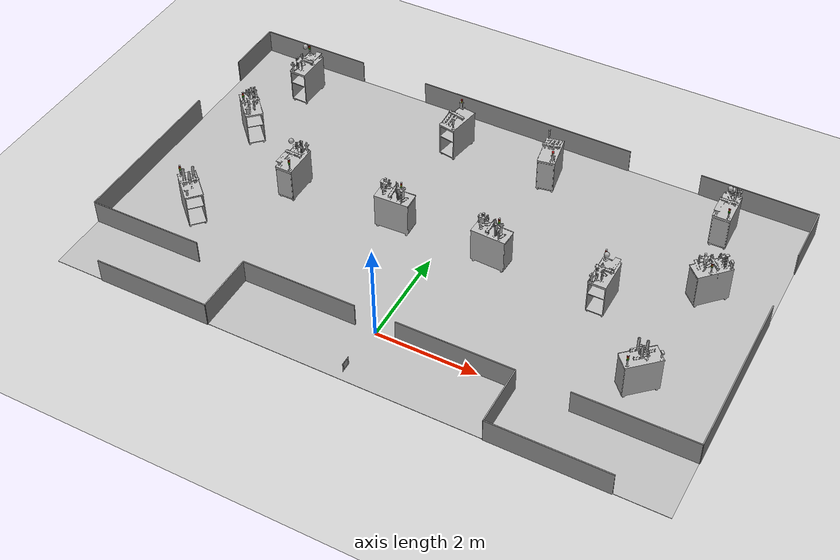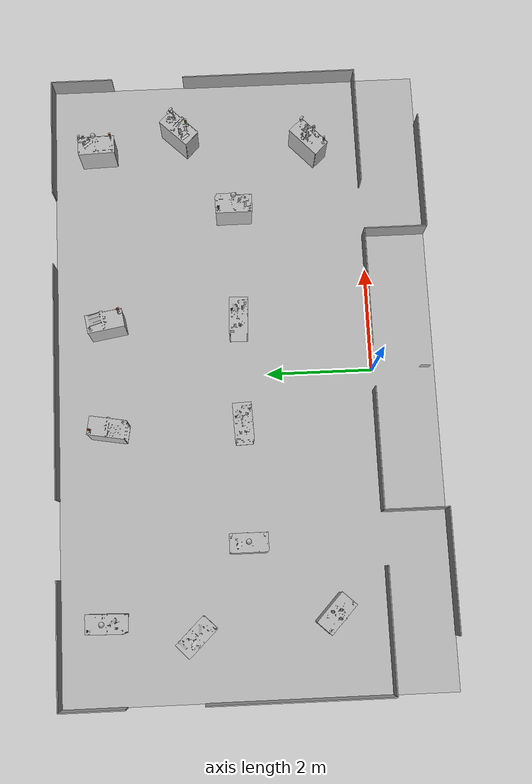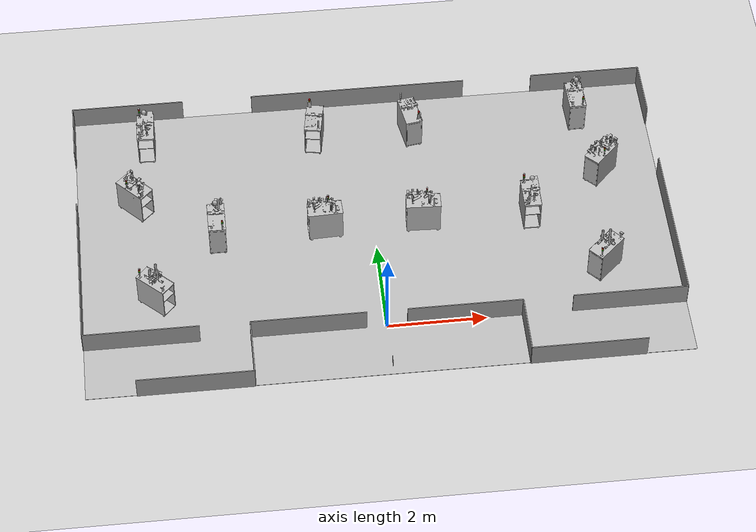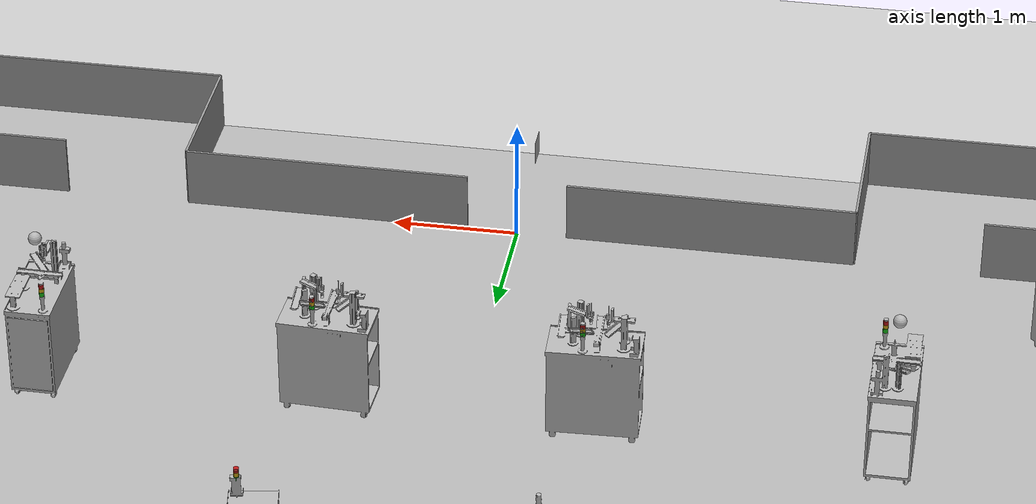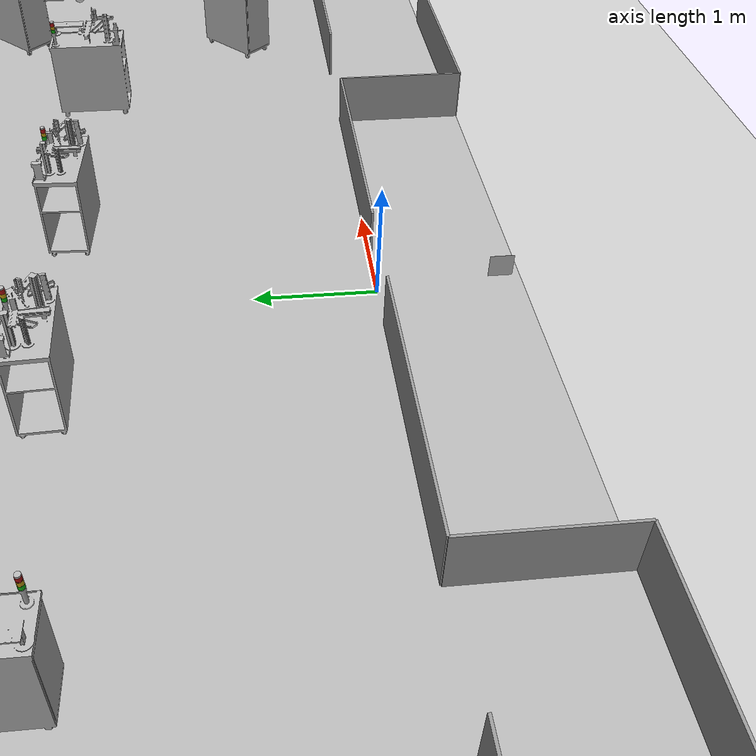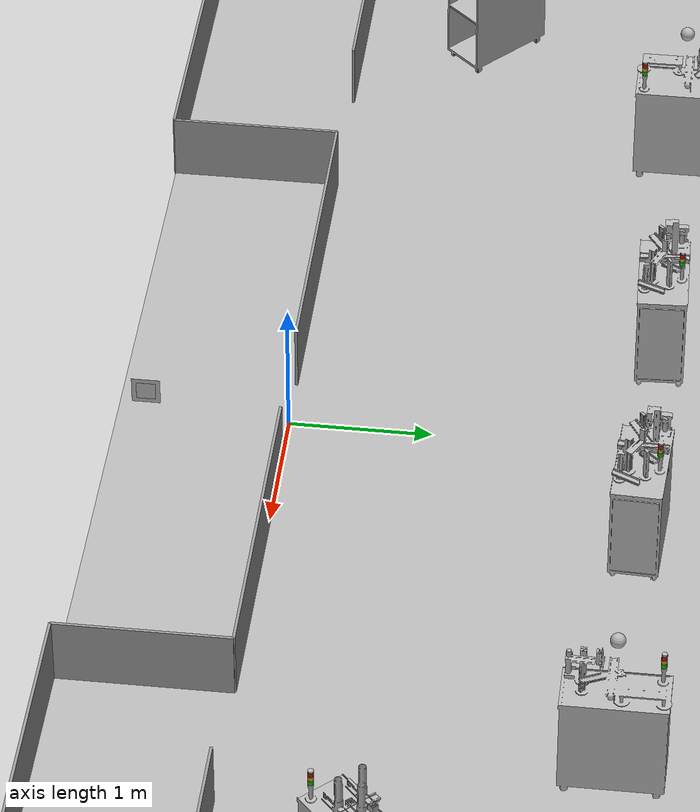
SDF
<sdf version="1.4">
 <world name="LLSF">
  <physics type="ode">
   <max_step_size>0.004</max_step_size>
   <real_time_factor>1</real_time_factor>
   <real_time_update_rate>300</real_time_update_rate>
  </physics>
  <scene><ambient>0.5 0.5 0.5 1.0</ambient><shadows>0</shadows></scene>
  <include><uri>model://ground_plane</uri></include>
  <include><uri>model://sun</uri></include>
  <include><uri>model://german_open_field</uri></include>
  <include><name>C-CS1</name><uri>model://mps_cap</uri><pose>-4.5 5.1 0 0 0 -1.6</pose></include>
  <include><name>M-CS1</name><uri>model://mps_cap</uri><pose>4.5 5.1 0 0 0 1.6</pose></include>
  <include><name>M-DS</name><uri>model://mps_delivery</uri><pose>-1 5.0 0 0 0 -1.74</pose></include>
  <include><name>C-DS</name><uri>model://mps_delivery</uri><pose>1 5.0 0 0 0 1.74</pose></include>
  <include><name>C-CS2</name><uri>model://mps_cap</uri><pose>-3.2 2.5 0 0 0 1.57</pose></include>
  <include><name>M-CS2</name><uri>model://mps_cap</uri><pose>3.2 2.5 0 0 0 -1.57</pose></include>
  <include><name>C-RS1</name><uri>model://mps_ring</uri><pose>1 2.5 0 0 0 3.1</pose></include>
  <include><name>M-RS1</name><uri>model://mps_ring</uri><pose>-1 2.5 0 0 0 -3.1</pose></include>
  <include><name>C-RS2</name><uri>model://mps_ring</uri><pose>4.8 3.5 0 0 0 0.8</pose></include>
  <include><name>M-RS2</name><uri>model://mps_ring</uri><pose>-4.8 3.5 0 0 0 -0.8</pose></include>
  <include><name>C-BS</name><uri>model://mps_base</uri><pose>4.5 1.0 0 0 0 0.75</pose></include>
  <include><name>M-BS</name><uri>model://mps_base</uri><pose>-4.5 1.0 0 0 0 -0.75</pose></include>
  <include><name>tag_01</name><uri>model://tag</uri><pose>0 -1 0.2 0 0 0</pose></include>
  <include><name>tag_02</name><uri>model://tag</uri><pose>0 -1 0.2 0 0 0</pose></include>
  <include><name>tag_17</name><uri>model://tag</uri><pose>0 -1 0.2 0 0 0</pose></include>
  <include><name>tag_18</name><uri>model://tag</uri><pose>0 -1 0.2 0 0 0</pose></include>
  <include><name>tag_33</name><uri>model://tag</uri><pose>0 -1 0.2 0 0 0</pose></include>
  <include><name>tag_34</name><uri>model://tag</uri><pose>0 -1 0.2 0 0 0</pose></include>
  <include><name>tag_177</name><uri>model://tag</uri><pose>0 -1 0.2 0 0 0</pose></include>
  <include><name>tag_178</name><uri>model://tag</uri><pose>0 -1 0.2 0 0 0</pose></include>
  <include><name>tag_65</name><uri>model://tag</uri><pose>0 -1 0.2 0 0 0</pose></include>
  <include><name>tag_66</name><uri>model://tag</uri><pose>0 -1 0.2 0 0 0</pose></include>
  <include><name>tag_81</name><uri>model://tag</uri><pose>0 -1 0.2 0 0 0</pose></include>
  <include><name>tag_82</name><uri>model://tag</uri><pose>0 -1 0.2 0 0 0</pose></include>
  <include><name>tag_97</name><uri>model://tag</uri><pose>0 -1 0.2 0 0 0</pose></include>
  <include><name>tag_98</name><uri>model://tag</uri><pose>0 -1 0.2 0 0 0</pose></include>
  <include><name>tag_113</name><uri>model://tag</uri><pose>0 -1 0.2 0 0 0</pose></include>
  <include><name>tag_114</name><uri>model://tag</uri><pose>0 -1 0.2 0 0 0</pose></include>
  <include><name>tag_129</name><uri>model://tag</uri><pose>0 -1 0.2 0 0 0</pose></include>
  <include><name>tag_130</name><uri>model://tag</uri><pose>0 -1 0.2 0 0 0</pose></include>
  <include><name>tag_145</name><uri>model://tag</uri><pose>0 -1 0.2 0 0 0</pose></include>
  <include><name>tag_146</name><uri>model://tag</uri><pose>0 -1 0.2 0 0 0</pose></include>
  <include><name>tag_161</name><uri>model://tag</uri><pose>0 -1 0.2 0 0 0</pose></include>
  <include><name>tag_162</name><uri>model://tag</uri><pose>0 -1 0.2 0 0 0</pose></include>
  <include><name>tag_49</name><uri>model://tag</uri><pose>0 -1 0.2 0 0 0</pose></include>
  <include><name>tag_50</name><uri>model://tag</uri><pose>0 -1 0.2 0 0 0</pose></include>
  <plugin name="llsf_refbox_comm" filename="libllsf_refbox_comm.so"/>
  <plugin name="timesync" filename="libtimesync.so"/>
 </world>
</sdf>

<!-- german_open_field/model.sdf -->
<sdf version="1.5">
  <model name="German Open Logistics League Field">
    <pose>0 2.5 0 0 0 0</pose>
    <static>true</static>
    <link name="field">
      <pose>0 0 0.01 0 0 0</pose>
      <collision name="collision">
        <geometry>
          <plane>
            <normal>0 0 1</normal>
            <size>12 7</size>
          </plane>
        </geometry>
        <surface>
          <friction>
            <ode>
              <mu>100</mu>
              <mu2>50</mu2>
            </ode>
          </friction>
        </surface>
      </collision>
      <visual name="carpet">
        <pose>0 -0.1 0 0 0 0</pose>
        <cast_shadows>false</cast_shadows>
        <geometry>
          <plane>
            <normal>0 0 1</normal>
            <size>12 7.2</size>
          </plane>
        </geometry>
        <material>
          <script>
            <uri>model://german_open_field/materials/scripts/</uri>
            <uri>model://german_open_field/materials/textures/</uri>
            <name>Logistics_League_Field/Image</name>
          </script>
        </material>
      </visual>
    </link>

    <link name="wall_bottom_middle_left">
      <pose>-1.55 -2.5 0.25 0 0 1.570796327</pose>
      <visual name="wall_bottom_middle_left-visual">
        <geometry>
          <box>
			<size>.02 2.3 .5</size>
          </box>
        </geometry>
        <cast_shadows>false</cast_shadows>
        <material>
	  <script>
	    <uri>file://media/materials/scripts/gazebo.material</uri>
	    <name>Gazebo/Grey</name>
	  </script>
        </material>
      </visual>
      <collision name="wall_bottom_middle_left-collision">
        <geometry>
		    <box>
			  <size>.02 2.3 .5</size>
		    </box>
        </geometry>
      </collision>
    </link>

    <link name="wall_bottom_middle_left_down">
      <pose>-2.7 -3.1 0.25 0 0 0</pose>
      <visual name="wall_bottom_middle_left_down-visual">
        <geometry>
          <box>
			<size>.02 1.2 .5</size>
          </box>
        </geometry>
        <cast_shadows>false</cast_shadows>
        <material>
	  <script>
	    <uri>file://media/materials/scripts/gazebo.material</uri>
	    <name>Gazebo/Grey</name>
	  </script>
        </material>
      </visual>
      <collision name="wall_bottom_middle_left_down-collision">
        <geometry>
		    <box>
			  <size>.02 1.2 .5</size>
		    </box>
        </geometry>
      </collision>
    </link>

    <link name="wall_bottom_middle_left_outer">
      <pose>-3.85 -3.7 0.25 0 0 1.570796327</pose>
      <visual name="wall_bottom_middle_left_outer-visual">
        <geometry>
          <box>
			<size>.02 2.3 .5</size>
          </box>
        </geometry>
        <cast_shadows>false</cast_shadows>
        <material>
	  <script>
	    <uri>file://media/materials/scripts/gazebo.material</uri>
	    <name>Gazebo/Grey</name>
	  </script>
        </material>
      </visual>
      <collision name="wall_bottom_middle_left_outer-collision">
        <geometry>
		    <box>
			  <size>.02 2.3 .5</size>
		    </box>
        </geometry>
      </collision>
    </link>

    <link name="wall_bottom_left">
      <pose>-4.85 -2.5 0.25 0 0 1.570796327</pose>
      <visual name="wall_bottom_left-visual">
        <geometry>
          <box>
			<size>.02 2.3 .5</size>
          </box>
        </geometry>
        <cast_shadows>false</cast_shadows>
        <material>
	  <script>
	    <uri>file://media/materials/scripts/gazebo.material</uri>
	    <name>Gazebo/Grey</name>
	  </script>
        </material>
      </visual>
      <collision name="wall_bottom_left-collision">
        <geometry>
		    <box>
			  <size>.02 2.3 .5</size>
		    </box>
        </geometry>
      </collision>
    </link>

    <link name="wall_bottom_middle_right">
      <pose>1.55 -2.5 0.25 0 0 1.570796327</pose>
      <visual name="wall_bottom_middle_right-visual">
        <geometry>
          <box>
			<size>.02 2.3 .5</size>
          </box>
        </geometry>
        <cast_shadows>false</cast_shadows>
        <material>
	  <script>
	    <uri>file://media/materials/scripts/gazebo.material</uri>
	    <name>Gazebo/Grey</name>
	  </script>
        </material>
      </visual>
      <collision name="wall_bottom_middle_right-collision">
        <geometry>
		    <box>
			  <size>.02 2.3 .5</size>
		    </box>
        </geometry>
      </collision>
    </link>

    <link name="wall_bottom_middle_right_down">
      <pose>2.7 -3.1 0.25 0 0 0</pose>
      <visual name="wall_bottom_middle_right_down-visual">
        <geometry>
          <box>
			<size>.02 1.2 .5</size>
          </box>
        </geometry>
        <cast_shadows>false</cast_shadows>
        <material>
	  <script>
	    <uri>file://media/materials/scripts/gazebo.material</uri>
	    <name>Gazebo/Grey</name>
	  </script>
        </material>
      </visual>
      <collision name="wall_bottom_middle_right_down-collision">
        <geometry>
		    <box>
			  <size>.02 1.2 .5</size>
		    </box>
        </geometry>
      </collision>
    </link>

    <link name="wall_bottom_middle_right_outer">
      <pose>3.85 -3.7 0.25 0 0 1.570796327</pose>
      <visual name="wall_bottom_middle_right_outer-visual">
        <geometry>
          <box>
			<size>.02 2.3 .5</size>
          </box>
        </geometry>
        <cast_shadows>false</cast_shadows>
        <material>
	  <script>
	    <uri>file://media/materials/scripts/gazebo.material</uri>
	    <name>Gazebo/Grey</name>
	  </script>
        </material>
      </visual>
      <collision name="wall_bottom_middle_right_outer-collision">
        <geometry>
		    <box>
			  <size>.02 2.3 .5</size>
		    </box>
        </geometry>
      </collision>
    </link>

    <link name="wall_bottom_right">
      <pose>4.85 -2.5 0.25 0 0 1.570796327</pose>
      <visual name="wall_bottom_right-visual">
        <geometry>
          <box>
			<size>.02 2.3 .5</size>
          </box>
        </geometry>
        <cast_shadows>false</cast_shadows>
        <material>
	  <script>
	    <uri>file://media/materials/scripts/gazebo.material</uri>
	    <name>Gazebo/Grey</name>
	  </script>
        </material>
      </visual>
      <collision name="wall_bottom_right-collision">
        <geometry>
		    <box>
			  <size>.02 2.3 .5</size>
		    </box>
        </geometry>
      </collision>
    </link>

    <link name="wall_left_bottom">
      <pose>-6 -0.8 0.25 0 0 0</pose>
      <visual name="wall_left_bottom-visual">
        <geometry>
          <box>
			<size>.02 3.4 .5</size>
          </box>
        </geometry>
        <cast_shadows>false</cast_shadows>
        <material>
	  <script>
	    <uri>file://media/materials/scripts/gazebo.material</uri>
	    <name>Gazebo/Grey</name>
	  </script>
        </material>
      </visual>
      <collision name="wall_left_bottom-collision">
        <geometry>
		    <box>
			  <size>.02 3.4 .5</size>
		    </box>
        </geometry>
      </collision>
    </link>

    <link name="wall_left_top">
      <pose>-6 2.9 0.25 0 0 0</pose>
      <visual name="wall_left_top-visual">
        <geometry>
          <box>
			<size>.02 1.2 .5</size>
          </box>
        </geometry>
        <cast_shadows>false</cast_shadows>
        <material>
	  <script>
	    <uri>file://media/materials/scripts/gazebo.material</uri>
	    <name>Gazebo/Grey</name>
	  </script>
        </material>
      </visual>
      <collision name="wall_left_top-collision">
        <geometry>
		    <box>
			  <size>.02 1.2 .5</size>
		    </box>
        </geometry>
      </collision>
    </link>

    <link name="wall_right_bottom">
      <pose>6 -0.8 0.25 0 0 0</pose>
      <visual name="wall_right_bottom-visual">
        <geometry>
          <box>
			<size>.02 3.4 .5</size>
          </box>
        </geometry>
        <cast_shadows>false</cast_shadows>
        <material>
	  <script>
	    <uri>file://media/materials/scripts/gazebo.material</uri>
	    <name>Gazebo/Grey</name>
	  </script>
        </material>
      </visual>
      <collision name="wall_right_bottom-collision">
        <geometry>
		    <box>
			  <size>.02 3.4 .5</size>
		    </box>
        </geometry>
      </collision>
    </link>

    <link name="wall_right_top">
      <pose>6 2.9 0.25 0 0 0</pose>
      <visual name="wall_right_top-visual">
        <geometry>
          <box>
			<size>.02 1.2 .5</size>
          </box>
        </geometry>
        <cast_shadows>false</cast_shadows>
        <material>
	  <script>
	    <uri>file://media/materials/scripts/gazebo.material</uri>
	    <name>Gazebo/Grey</name>
	  </script>
        </material>
      </visual>
      <collision name="wall_right_top-collision">
        <geometry>
		    <box>
			  <size>.02 1.2 .5</size>
		    </box>
        </geometry>
      </collision>
    </link>

    <link name="wall_top_middle">
      <pose>0 3.5 0.25 0 0 1.570796327</pose>
      <visual name="wall_top_middle-visual">
        <geometry>
          <box>
			<size>.02 4.5 .5</size>
          </box>
        </geometry>
        <cast_shadows>false</cast_shadows>
        <material>
	  <script>
	    <uri>file://media/materials/scripts/gazebo.material</uri>
	    <name>Gazebo/Grey</name>
	  </script>
        </material>
      </visual>
      <collision name="wall_top_middle-collision">
        <geometry>
		    <box>
			  <size>.02 4.5 .5</size>
		    </box>
        </geometry>
      </collision>
    </link>

    <link name="wall_top_left">
      <pose>-4.85 3.5 0.25 0 0 1.570796327</pose>
      <visual name="wall_top_left-visual">
        <geometry>
          <box>
			<size>.02 2.3 .5</size>
          </box>
        </geometry>
        <cast_shadows>false</cast_shadows>
        <material>
	  <script>
	    <uri>file://media/materials/scripts/gazebo.material</uri>
	    <name>Gazebo/Grey</name>
	  </script>
        </material>
      </visual>
      <collision name="wall_top_left-collision">
        <geometry>
		    <box>
			  <size>.02 2.3 .5</size>
		    </box>
        </geometry>
      </collision>
    </link>

    <link name="wall_top_right">
      <pose>4.85 3.5 0.25 0 0 1.570796327</pose>
      <visual name="wall_top_right-visual">
        <geometry>
          <box>
			<size>.02 2.3 .5</size>
          </box>
        </geometry>
        <cast_shadows>false</cast_shadows>
        <material>
	  <script>
	    <uri>file://media/materials/scripts/gazebo.material</uri>
	    <name>Gazebo/Grey</name>
	  </script>
        </material>
      </visual>
      <collision name="wall_top_right-collision">
        <geometry>
		    <box>
			  <size>.02 2.3 .5</size>
		    </box>
        </geometry>
      </collision>
    </link>

  </model>
</sdf>

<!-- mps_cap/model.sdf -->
<sdf version="1.4">
  <model name="mps_cap">
    <static>true</static>
    <link name="body">
      <pose>0 0 0.01 0 0 0</pose>
      <gravity>true</gravity>
      <inertial>
	<pose>0 0 0.005 0 0 0</pose>
        <mass>50</mass>
        <inertia>
	  <!-- according to http://en.wikipedia.org/wiki/List_of_moments_of_inertia for a solid box of width: 0.35, height:0.7, depth: 0.7, mass m=30 -->
          <ixx>2.45</ixx>
          <ixy>0.0</ixy>
          <ixz>0.0</ixz>
          <iyy>1.53125</iyy>
          <iyz>0.0</iyz>
          <izz>1.53125</izz>
        </inertia>
      </inertial>
 <visual name="body-visual">
	<pose>-0.35 .172 0 0 0 1.57</pose>
        <geometry>
          <mesh>
            <uri>model://mps_cap/meshes/mps_cap.dae</uri>
          </mesh>
        </geometry>
	<material>
          <script>
            <uri>model://mps_cap/materials/scripts</uri>
            <uri>model://mps_cap/materials/textures</uri>
            <name>mps_cap</name>
          </script>
        </material>
        <cast_shadows>false</cast_shadows>
      </visual>      <!-- Shelf: -->
      <collision name="collision_shelf">
        <pose>-0.175 0.105 0.895 0 0 0 </pose>
        <geometry>
	  <box>
	    <size>0.295 0.12 0.01</size>
          </box>
        </geometry>
        <surface>
          <contact>
            <ode>
              <min_depth>0.01</min_depth>
            </ode>
          </contact>
        </surface>
      </collision>

      <!-- Collision Elements: -->
      <collision name="collision_conveyor_belt">
        <pose>0.025 0 0.88 0 0 0 </pose>
        <geometry>
	  <box>
	    <size>0.03 0.35 0.04</size>
          </box>
        </geometry>
        <surface>
          <contact>
            <ode>
              <min_depth>0.01</min_depth>
            </ode>
          </contact>
        </surface>
      </collision>
      <collision name="collision_conveyor_belt_border_west">
        <pose>0 0 0.9 0 0 0 </pose>
        <geometry>
	  <box>
	    <size>0.01 0.35 0.02</size>
          </box>
        </geometry>
        <surface>
          <contact>
            <ode>
              <min_depth>0.01</min_depth>
            </ode>
          </contact>
        </surface>
      </collision>
      <collision name="collision_conveyor_belt_border_east">
        <pose>0.05 0 0.9 0 0 0 </pose>
        <geometry>
	  <box>
	    <size>0.01 0.35 0.02</size>
          </box>
        </geometry>
        <surface>
          <contact>
            <ode>
              <min_depth>0.01</min_depth>
            </ode>
          </contact>
        </surface>
      </collision>

      <!-- Box -->
      <collision name="collision_base_box_ground">
        <pose>0 0 0.06 0 0 0 </pose>
        <geometry>
	  <box>
	    <size>0.69 0.35 0.01</size>
          </box>
        </geometry>
        <surface>
          <contact>
            <ode>
              <min_depth>0.01</min_depth>
            </ode>
          </contact>
        </surface>
      </collision>
      <collision name="collision_base_box_wall_south">
        <pose>0 -0.175 0.42 0 0 0 </pose>
        <geometry>
	  <box>
	    <size>0.69 0.01 0.72</size>
          </box>
        </geometry>
        <surface>
          <contact>
            <ode>
              <min_depth>0.01</min_depth>
            </ode>
          </contact>
        </surface>
      </collision>
      <collision name="collision_base_box_wall_north">
        <pose>0 0.175 0.42 0 0 0 </pose>
        <geometry>
	  <box>
	    <size>0.69 0.01 0.72</size>
          </box>
        </geometry>
        <surface>
          <contact>
            <ode>
              <min_depth>0.01</min_depth>
            </ode>
          </contact>
        </surface>
      </collision>
      <!-- On both ends of the mps are transparent walls a laser sensor can look through, in the middle are solid walls -->
      <collision name="collision_base_box_wall_middle_1">
        <pose>-0.035 0 0.42 0 0 0 </pose>
        <geometry>
	  <box>
	    <size>0.01 0.35 0.72</size>
          </box>
        </geometry>
        <surface>
          <contact>
            <ode>
              <min_depth>0.01</min_depth>
            </ode>
          </contact>
        </surface>
      </collision>
      <collision name="collision_base_box_wall_middle_2">
        <pose>0.035 0 0.42 0 0 0 </pose>
        <geometry>
	  <box>
	    <size>0.01 0.35 0.72</size>
          </box>
        </geometry>
        <surface>
          <contact>
            <ode>
              <min_depth>0.01</min_depth>
            </ode>
          </contact>
        </surface>
      </collision>
      <collision name="collision_base_box_top">
        <pose>0 0 0.78 0 0 0 </pose>
        <geometry>
	  <box>
	    <size>0.69 0.35 0.01</size>
          </box>
        </geometry>
        <surface>
          <contact>
            <ode>
              <min_depth>0.01</min_depth>
            </ode>
          </contact>
        </surface>
      </collision>
      <collision name="collision_wheels">
	<!-- Collision to avoid that the box falls down (In reality done by wheels) -->
        <pose>0 0 0.01 0 0 0 </pose>
        <geometry>
	  <box>
	    <size>0.69 0.35 0.02</size>
          </box>
        </geometry>
        <surface>
          <contact>
            <ode>
              <min_depth>0.01</min_depth>
            </ode>
          </contact>
        </surface>
      </collision>
      <visual name="have_cap">
        <cast_shadows>false</cast_shadows>
        <geometry>
          <sphere>
            <radius>0.05</radius>
          </sphere>
        </geometry>
        <pose>0 0 1.22 0 0 0</pose>
      </visual>
    </link>

    <include>
      <name>light_signals</name>
      <uri>model://light_signals</uri>
      <pose>-0.2905 -0.113 0.925 0 0 0</pose>
    </include>

    <link name="mps_tag_output">
      <pose>0.025 -0.175 0.54 0 0 -1.57</pose>
    </link>
    <link name="mps_tag_input">
      <pose>0.025 0.175 0.54 0 0 1.57</pose>
    </link>

    <joint name="mps_light_joint" type="revolute">
      <parent>body</parent>
      <child>light_signals::link</child>
      <axis>
        <limit>
          <lower>0</lower>
          <upper>0</upper>
        </limit>
        <xyz>0 0 1</xyz>
      </axis>
    </joint>

    <!-- Plugin to control the MPS and detect workpieces -->
    <plugin name="MPS" filename="libmps.so"/>
  </model>
</sdf>

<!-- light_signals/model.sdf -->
<sdf version="1.4">
  <model name="light_signal">
    <!-- The center is the bottom of the green light -->
    <pose>0 0 0.915 0 0 0 </pose>
    <static>true</static>
    <link name="link">
      <visual name="redon">
        <pose>0 0 0.085 0 0 0 </pose>
	<cast_shadows>false</cast_shadows>
        <geometry>
          <cylinder>
	    <radius>0.0195</radius>
	    <length>0.034</length>
          </cylinder>
        </geometry>
	<material>
	  <ambient>0.8 0 0 0.8</ambient>
	  <diffuse>0.8 0.0 0.0 0.8</diffuse>
	  <emissive>1.0 0.3 0.3 1.0</emissive>
	</material>
      </visual>
      <visual name="yellowon">
        <pose>0 0 0.051 0 0 0 </pose>
	<cast_shadows>false</cast_shadows>
        <geometry>
          <cylinder>
	    <radius>0.0195</radius>
	    <length>0.034</length>
          </cylinder>
        </geometry>
	<material>
	  <ambient>0.9 0.7 0 0.8</ambient>
	  <diffuse>0.9 0.7 0.0 0.8</diffuse>
	  <emissive>1.0 0.9 0.3 1.0</emissive>
	</material>
      </visual>
      <visual name="greenon">
        <pose>0 0 0.017 0 0 0 </pose>
	<cast_shadows>false</cast_shadows>
        <geometry>
          <cylinder>
	    <radius>0.0195</radius>
	    <length>0.034</length>
          </cylinder>
        </geometry>
	<material>
	  <ambient>0.0 0.8 0 0.8</ambient>
	  <diffuse>0.0 0.8 0.0 0.8</diffuse>
	  <emissive>0.3 1.0 0.3 1.0</emissive>
	</material>
     </visual>
    </link>

    <!-- Plugin to control the light signal -->
    <plugin name="MPS" filename="liblight_control.so"/>
  </model>
</sdf>

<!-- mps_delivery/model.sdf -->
<sdf version="1.4">
  <model name="mps_delivery">
    <static>true</static>
    <link name="body">
      <pose>0 0 0.01 0 0 0</pose>
      <gravity>true</gravity>
      <inertial>
	<pose>0 0 0.005 0 0 0</pose>
        <mass>50</mass>
        <inertia>
	  <!-- according to http://en.wikipedia.org/wiki/List_of_moments_of_inertia for a solid box of width: 0.35, height:0.7, depth: 0.7, mass m=30 -->
          <ixx>2.45</ixx>
          <ixy>0.0</ixy>
          <ixz>0.0</ixz>
          <iyy>1.53125</iyy>
          <iyz>0.0</iyz>
          <izz>1.53125</izz>
        </inertia>
      </inertial>
      <visual name="body-visual">
	<pose>-0.35 .172 0 0 0 1.57</pose>
        <geometry>
          <mesh>
            <uri>model://mps_delivery/meshes/mps_delivery.dae</uri>
          </mesh>
        </geometry>
	<material>
          <script>
            <uri>model://mps_delivery/materials/scripts</uri>
            <uri>model://mps_delivery/materials/textures</uri>
            <name>mps_delivery</name>
          </script>
        </material>
        <cast_shadows>false</cast_shadows>
      </visual>

      <!-- Collision Elements: -->
      <collision name="collision_conveyor_belt">
        <pose>0.025 0 0.88 0 0 0 </pose>
        <geometry>
	  <box>
	    <size>0.03 0.35 0.04</size>
          </box>
        </geometry>
        <surface>
          <contact>
            <ode>
              <min_depth>0.01</min_depth>
            </ode>
          </contact>
        </surface>
      </collision>
      <collision name="collision_conveyor_belt_border_west">
        <pose>0 0 0.9 0 0 0 </pose>
        <geometry>
	  <box>
	    <size>0.01 0.35 0.02</size>
          </box>
        </geometry>
        <surface>
          <contact>
            <ode>
              <min_depth>0.01</min_depth>
            </ode>
          </contact>
        </surface>
      </collision>
      <collision name="collision_conveyor_belt_border_east">
        <pose>0.05 0 0.9 0 0 0 </pose>
        <geometry>
	  <box>
	    <size>0.01 0.35 0.02</size>
          </box>
        </geometry>
        <surface>
          <contact>
            <ode>
              <min_depth>0.01</min_depth>
            </ode>
          </contact>
        </surface>
      </collision>

      <!-- Box -->
      <collision name="collision_base_box_ground">
        <pose>0 0 0.06 0 0 0 </pose>
        <geometry>
	  <box>
	    <size>0.69 0.35 0.01</size>
          </box>
        </geometry>
        <surface>
          <contact>
            <ode>
              <min_depth>0.01</min_depth>
            </ode>
          </contact>
        </surface>
      </collision>
      <collision name="collision_base_box_wall_south">
        <pose>0 -0.175 0.42 0 0 0 </pose>
        <geometry>
	  <box>
	    <size>0.69 0.01 0.72</size>
          </box>
        </geometry>
        <surface>
          <contact>
            <ode>
              <min_depth>0.01</min_depth>
            </ode>
          </contact>
        </surface>
      </collision>
      <collision name="collision_base_box_wall_north">
        <pose>0 0.175 0.42 0 0 0 </pose>
        <geometry>
	  <box>
	    <size>0.69 0.01 0.72</size>
          </box>
        </geometry>
        <surface>
          <contact>
            <ode>
              <min_depth>0.01</min_depth>
            </ode>
          </contact>
        </surface>
      </collision>
      <!-- On both ends of the mps are transparent walls a laser sensor can look through, in the middle are solid walls -->
      <collision name="collision_base_box_wall_middle_1">
        <pose>-0.035 0 0.42 0 0 0 </pose>
        <geometry>
	  <box>
	    <size>0.01 0.35 0.72</size>
          </box>
        </geometry>
        <surface>
          <contact>
            <ode>
              <min_depth>0.01</min_depth>
            </ode>
          </contact>
        </surface>
      </collision>
      <collision name="collision_base_box_wall_middle_2">
        <pose>0.035 0 0.42 0 0 0 </pose>
        <geometry>
	  <box>
	    <size>0.01 0.35 0.72</size>
          </box>
        </geometry>
        <surface>
          <contact>
            <ode>
              <min_depth>0.01</min_depth>
            </ode>
          </contact>
        </surface>
      </collision>
      <collision name="collision_base_box_top">
        <pose>0 0 0.78 0 0 0 </pose>
        <geometry>
	  <box>
	    <size>0.69 0.35 0.01</size>
          </box>
        </geometry>
        <surface>
          <contact>
            <ode>
              <min_depth>0.01</min_depth>
            </ode>
          </contact>
        </surface>
      </collision>
      <collision name="collision_wheels">
	<!-- Collision to avoid that the box falls down (In reality done by wheels) -->
        <pose>0 0 0.01 0 0 0 </pose>
        <geometry>
	  <box>
	    <size>0.69 0.35 0.02</size>
          </box>
        </geometry>
        <surface>
          <contact>
            <ode>
              <min_depth>0.01</min_depth>
            </ode>
          </contact>
        </surface>
      </collision>
    </link>

    <include>
      <name>light_signals</name>
      <uri>model://light_signals</uri>
      <pose>-0.2905 -0.113 0.925 0 0 0</pose>
    </include>

    <link name="mps_tag_output">
      <pose>0.025 -0.175 0.54 0 0 -1.57</pose>
    </link>
    <link name="mps_tag_input">
      <pose>0.025 0.175 0.54 0 0 1.57</pose>
    </link>

    <joint name="mps_light_joint" type="revolute">
      <parent>body</parent>
      <child>light_signals::link</child>
      <axis>
        <limit>
          <lower>0</lower>
          <upper>0</upper>
        </limit>
        <xyz>0 0 1</xyz>
      </axis>
    </joint>

    <!-- Plugin to control the MPS and detect workpieces -->
    <plugin name="MPS" filename="libmps.so"/>
  </model>
</sdf>

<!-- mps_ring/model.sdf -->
<sdf version="1.4">
  <model name="mps_ring">
    <static>true</static>
    <link name="body">
      <pose>0 0 0.01 0 0 0</pose>
      <gravity>true</gravity>
      <inertial>
	<pose>0 0 0.005 0 0 0</pose>
        <mass>50</mass>
        <inertia>
	  <!-- according to http://en.wikipedia.org/wiki/List_of_moments_of_inertia for a solid box of width: 0.35, height:0.7, depth: 0.7, mass m=30 -->
          <ixx>2.45</ixx>
          <ixy>0.0</ixy>
          <ixz>0.0</ixz>
          <iyy>1.53125</iyy>
          <iyz>0.0</iyz>
          <izz>1.53125</izz>
        </inertia>
      </inertial>
       <visual name="body-visual">
	<pose>-0.35 .172 0 0 0 1.57</pose>
        <geometry>
          <mesh>
            <uri>model://mps_ring/meshes/mps_ring.dae</uri>
          </mesh>
        </geometry>
	<material>
          <script>
            <uri>model://mps_ring/materials/scripts</uri>
            <uri>model://mps_ring/materials/textures</uri>
            <name>mps_ring</name>
          </script>
        </material>
        <cast_shadows>false</cast_shadows>
      </visual>

      <!-- Collision Elements: -->
      <collision name="collision_conveyor_belt">
        <pose>0.025 0 0.88 0 0 0 </pose>
        <geometry>
	  <box>
	    <size>0.03 0.35 0.04</size>
          </box>
        </geometry>
        <surface>
          <contact>
            <ode>
              <min_depth>0.01</min_depth>
            </ode>
          </contact>
        </surface>
      </collision>
      <collision name="collision_conveyor_belt_border_west">
        <pose>0 0 0.9 0 0 0 </pose>
        <geometry>
	  <box>
	    <size>0.01 0.35 0.02</size>
          </box>
        </geometry>
        <surface>
          <contact>
            <ode>
              <min_depth>0.01</min_depth>
            </ode>
          </contact>
        </surface>
      </collision>
      <collision name="collision_conveyor_belt_border_east">
        <pose>0.05 0 0.9 0 0 0 </pose>
        <geometry>
	  <box>
	    <size>0.01 0.35 0.02</size>
          </box>
        </geometry>
        <surface>
          <contact>
            <ode>
              <min_depth>0.01</min_depth>
            </ode>
          </contact>
        </surface>
      </collision>

      <!-- Box -->
      <collision name="collision_base_box_ground">
        <pose>0 0 0.06 0 0 0 </pose>
        <geometry>
	  <box>
	    <size>0.69 0.35 0.01</size>
          </box>
        </geometry>
        <surface>
          <contact>
            <ode>
              <min_depth>0.01</min_depth>
            </ode>
          </contact>
        </surface>
      </collision>
      <collision name="collision_base_box_wall_south">
        <pose>0 -0.175 0.42 0 0 0 </pose>
        <geometry>
	  <box>
	    <size>0.69 0.01 0.72</size>
          </box>
        </geometry>
        <surface>
          <contact>
            <ode>
              <min_depth>0.01</min_depth>
            </ode>
          </contact>
        </surface>
      </collision>
      <collision name="collision_base_box_wall_north">
        <pose>0 0.175 0.42 0 0 0 </pose>
        <geometry>
	  <box>
	    <size>0.69 0.01 0.72</size>
          </box>
        </geometry>
        <surface>
          <contact>
            <ode>
              <min_depth>0.01</min_depth>
            </ode>
          </contact>
        </surface>
      </collision>
      <!-- On both ends of the mps are transparent walls a laser sensor can look through, in the middle are solid walls -->
      <collision name="collision_base_box_wall_middle_1">
        <pose>-0.035 0 0.42 0 0 0 </pose>
        <geometry>
	  <box>
	    <size>0.01 0.35 0.72</size>
          </box>
        </geometry>
        <surface>
          <contact>
            <ode>
              <min_depth>0.01</min_depth>
            </ode>
          </contact>
        </surface>
      </collision>
      <collision name="collision_base_box_wall_middle_2">
        <pose>0.035 0 0.42 0 0 0 </pose>
        <geometry>
	  <box>
	    <size>0.01 0.35 0.72</size>
          </box>
        </geometry>
        <surface>
          <contact>
            <ode>
              <min_depth>0.01</min_depth>
            </ode>
          </contact>
        </surface>
      </collision>
      <collision name="collision_base_box_top">
        <pose>0 0 0.78 0 0 0 </pose>
        <geometry>
	  <box>
	    <size>0.69 0.35 0.01</size>
          </box>
        </geometry>
        <surface>
          <contact>
            <ode>
              <min_depth>0.01</min_depth>
            </ode>
          </contact>
        </surface>
      </collision>
      <collision name="collision_wheels">
	<!-- Collision to avoid that the box falls down (In reality done by wheels) -->
        <pose>0 0 0.01 0 0 0 </pose>
        <geometry>
	  <box>
	    <size>0.69 0.35 0.02</size>
          </box>
        </geometry>
        <surface>
          <contact>
            <ode>
              <min_depth>0.01</min_depth>
            </ode>
          </contact>
        </surface>
      </collision>
      <visual name="base_0">
        <cast_shadows>false</cast_shadows>
        <geometry>
          <sphere>
            <radius>0.05</radius>
          </sphere>
        </geometry>
      </visual>
      <visual name="base_1">
        <cast_shadows>false</cast_shadows>
        <geometry>
          <sphere>
            <radius>0.05</radius>
          </sphere>
        </geometry>
      </visual>
      <visual name="base_2">
        <cast_shadows>false</cast_shadows>
        <geometry>
          <sphere>
            <radius>0.05</radius>
          </sphere>
        </geometry>
      </visual>
    </link>

    <include>
      <name>light_signals</name>
      <uri>model://light_signals</uri>
      <pose>-0.08 -0.127 0.925 0 0 0</pose>
    </include>

    <link name="mps_tag_output">
      <pose>0.025 -0.175 0.54 0 0 -1.57</pose>
    </link>
    <link name="mps_tag_input">
      <pose>0.025 0.175 0.54 0 0 1.57</pose>
    </link>

    <joint name="mps_light_joint" type="revolute">
      <parent>body</parent>
      <child>light_signals::link</child>
      <axis>
        <limit>
          <lower>0</lower>
          <upper>0</upper>
        </limit>
        <xyz>0 0 1</xyz>
      </axis>
    </joint>

    <!-- Plugin to control the MPS and detect workpieces -->
    <plugin name="MPS" filename="libmps.so"/>
  </model>
</sdf>

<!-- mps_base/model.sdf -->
<sdf version="1.4">
  <model name="mps_base">
    <static>true</static>
    <link name="body">
      <pose>0 0 0.01 0 0 0</pose>
      <gravity>true</gravity>
      <inertial>
	<pose>0 0 0.005 0 0 0</pose>
        <mass>50</mass>
        <inertia>
	  <!-- according to http://en.wikipedia.org/wiki/List_of_moments_of_inertia for a solid box of width: 0.35, height:0.7, depth: 0.7, mass m=30 -->
          <ixx>2.45</ixx>
          <ixy>0.0</ixy>
          <ixz>0.0</ixz>
          <iyy>1.53125</iyy>
          <iyz>0.0</iyz>
          <izz>1.53125</izz>
        </inertia>
      </inertial>
      <visual name="body-visual">
	<pose>-0.35 .172 0 0 0 1.57</pose>
        <geometry>
          <mesh>
            <uri>model://mps_base/meshes/mps_base.dae</uri>
          </mesh>
        </geometry>
	<material>
          <script>
            <uri>model://mps_base/materials/scripts</uri>
            <uri>model://mps_base/materials/textures</uri>
            <name>mps_base</name>
          </script>
        </material>
        <cast_shadows>false</cast_shadows>
      </visual>
      <!-- Collision Elements: -->
            <collision name="collision_conveyor_belt">
        <pose>0.025 0 0.88 0 0 0 </pose>
        <geometry>
	  <box>
	    <size>0.03 0.35 0.04</size>
          </box>
        </geometry>
        <surface>
          <contact>
            <ode>
              <min_depth>0.01</min_depth>
            </ode>
          </contact>
        </surface>
      </collision>
      <collision name="collision_conveyor_belt_border_west">
        <pose>0 0 0.9 0 0 0 </pose>
        <geometry>
	  <box>
	    <size>0.01 0.35 0.02</size>
          </box>
        </geometry>
        <surface>
          <contact>
            <ode>
              <min_depth>0.01</min_depth>
            </ode>
          </contact>
        </surface>
      </collision>
      <collision name="collision_conveyor_belt_border_east">
        <pose>0.05 0 0.9 0 0 0 </pose>
        <geometry>
	  <box>
	    <size>0.01 0.35 0.02</size>
          </box>
        </geometry>
        <surface>
          <contact>
            <ode>
              <min_depth>0.01</min_depth>
            </ode>
          </contact>
        </surface>
      </collision>

      <!-- Box -->
      <collision name="collision_base_box_ground">
        <pose>0 0 0.06 0 0 0 </pose>
        <geometry>
	  <box>
	    <size>0.69 0.35 0.01</size>
          </box>
        </geometry>
        <surface>
          <contact>
            <ode>
              <min_depth>0.01</min_depth>
            </ode>
          </contact>
        </surface>
      </collision>
      <collision name="collision_base_box_wall_south">
        <pose>0 -0.175 0.42 0 0 0 </pose>
        <geometry>
	  <box>
	    <size>0.69 0.01 0.72</size>
          </box>
        </geometry>
        <surface>
          <contact>
            <ode>
              <min_depth>0.01</min_depth>
            </ode>
          </contact>
        </surface>
      </collision>
      <collision name="collision_base_box_wall_north">
        <pose>0 0.175 0.42 0 0 0 </pose>
        <geometry>
	  <box>
	    <size>0.69 0.01 0.72</size>
          </box>
        </geometry>
        <surface>
          <contact>
            <ode>
              <min_depth>0.01</min_depth>
            </ode>
          </contact>
        </surface>
      </collision>
      <!-- On both ends of the mps are transparent walls a laser sensor can look through, in the middle are solid walls -->
      <collision name="collision_base_box_wall_middle_1">
        <pose>-0.035 0 0.42 0 0 0 </pose>
        <geometry>
	  <box>
	    <size>0.01 0.35 0.72</size>
          </box>
        </geometry>
        <surface>
          <contact>
            <ode>
              <min_depth>0.01</min_depth>
            </ode>
          </contact>
        </surface>
      </collision>
      <collision name="collision_base_box_wall_middle_2">
        <pose>0.035 0 0.42 0 0 0 </pose>
        <geometry>
	  <box>
	    <size>0.01 0.35 0.72</size>
          </box>
        </geometry>
        <surface>
          <contact>
            <ode>
              <min_depth>0.01</min_depth>
            </ode>
          </contact>
        </surface>
      </collision>
      <collision name="collision_base_box_top">
        <pose>0 0 0.78 0 0 0 </pose>
        <geometry>
	  <box>
	    <size>0.69 0.35 0.01</size>
          </box>
        </geometry>
        <surface>
          <contact>
            <ode>
              <min_depth>0.01</min_depth>
            </ode>
          </contact>
        </surface>
      </collision>
      <collision name="collision_wheels">
	<!-- Collision to avoid that the box falls down (In reality done by wheels) -->
        <pose>0 0 0.01 0 0 0 </pose>
        <geometry>
	  <box>
	    <size>0.69 0.35 0.02</size>
          </box>
        </geometry>
        <surface>
          <contact>
            <ode>
              <min_depth>0.01</min_depth>
            </ode>
          </contact>
        </surface>
      </collision>
    </link>

    <include>
      <name>light_signals</name>
      <uri>model://light_signals</uri>
      <pose>-0.2905 -0.113 0.925 0 0 0</pose>
    </include>

    <link name="mps_tag_output">
      <pose>0.025 -0.175 0.54 0 0 -1.57</pose>
    </link>
    <link name="mps_tag_input">
      <pose>0.025 0.175 0.54 0 0 1.57</pose>
    </link>

    <joint name="mps_light_joint" type="revolute">
      <parent>body</parent>
      <child>light_signals::link</child>
      <axis>
        <limit>
          <lower>0</lower>
          <upper>0</upper>
        </limit>
        <xyz>0 0 1</xyz>
      </axis>
    </joint>

    <!-- Plugin to control the MPS and detect workpieces -->
    <plugin name="MPS" filename="libmps.so"/>
  </model>
</sdf>

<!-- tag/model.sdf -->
<sdf version="1.4">
  <model name="tag">
    <static>false</static>
    <link name="link">
      <pose>0 0 0 1.57 0 1.57</pose>
      <gravity>false</gravity>
      <!-- White background for tag -->

      <visual name="tag_background">
        <cast_shadows>false</cast_shadows>
        <pose>0 0 0 0 0 0</pose>
        <geometry>
          <plane>
            <normal>0 0 1</normal>
            <size>0.2 0.2</size>
          </plane>
        </geometry>
	<material>
          <script>
            <uri>model://tag/materials/scripts</uri>
            <uri>model://tag/materials/textures</uri>
            <name>tag/empty</name>
          </script>
	</material>
      </visual>
      <!-- The visual tag pattern is changed by the plugin depending on the name of this model. So spawn it with the name tag_01 to let it have the patter with id 01. -->
      <visual name="pattern">
        <cast_shadows>false</cast_shadows>
        <pose>0 0 0.001 0 0 0</pose>
        <geometry>
          <plane>
            <normal>0 0 1</normal>
            <size>0.135 0.135</size>
          </plane>
        </geometry>
	<material>
          <script>
            <uri>model://tag/materials/scripts</uri>
            <uri>model://tag/materials/textures</uri>
            <name>tag/tag_01</name>
          </script>
	</material>
      </visual>
    </link>

    <!-- Plugin to create the right pattern and publish the position -->
    <plugin name="Tag" filename="libtag.so"/>
    <plugin name="GPS" filename="libgps.so"/>
  </model>
</sdf>
